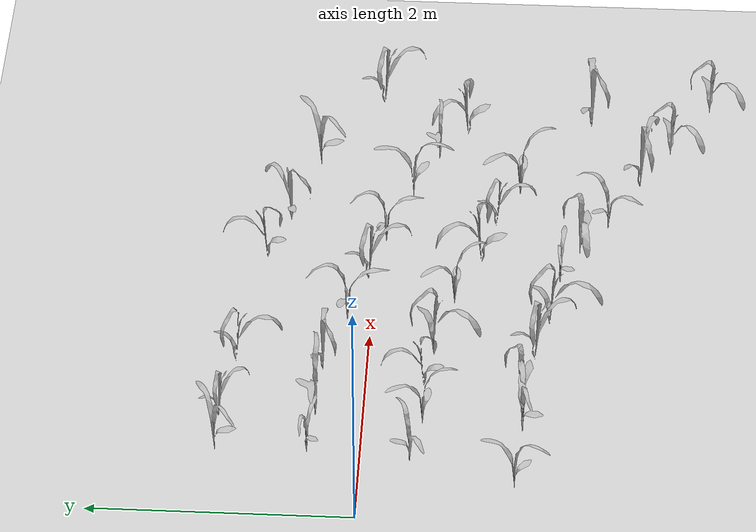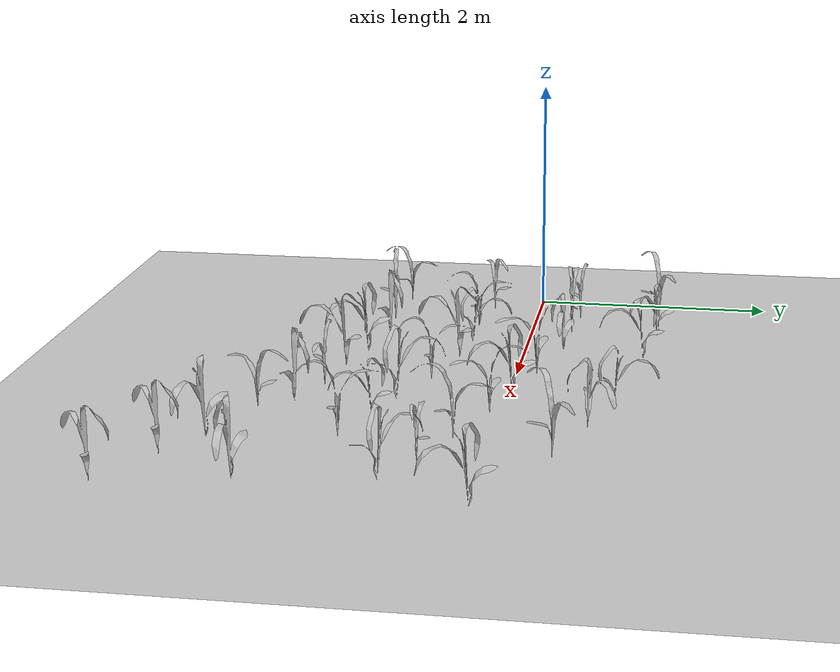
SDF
<sdf version="1.6">
 <world name="default">
  <model name="ground_plane">
   <static>1</static>
   <link name="link">
    <collision name="collision">
     <geometry><plane><normal>0 0 1</normal><size>100 100</size></plane></geometry>
     <surface>
      <contact><collide_bitmask>65535</collide_bitmask></contact>
      <friction><ode><mu>100</mu><mu2>50</mu2></ode></friction>
     </surface>
    </collision>
    <visual name="visual">
     <cast_shadows>0</cast_shadows>
     <geometry><plane><normal>0 0 1</normal><size>100 100</size></plane></geometry>
     <material>
      <script><uri>file://media/materials/scripts/gazebo.material</uri><name>Gazebo/Grey</name></script>
     </material>
    </visual>
   </link>
  </model>
  <model name="maize_02_0000">
   <pose>0.6266364575345471 0.39372613624309966 0.05 0 -0 1.9641627684335625</pose>
   <link name="maize_02_0000_link">
    <inertial>
     <mass>5.0</mass>
     <inertia>
      <ixx>0.0033416667</ixx>
      <ixy>0</ixy>
      <ixz>0</ixz>
      <iyy>0.0033416667</iyy>
      <iyz>0</iyz>
      <izz>0.000016666667</izz>
     </inertia>
     <pose>0 0 0.1 0 0 0</pose>
    </inertial>
    <collision name="collision">
     <pose>0 0 0.2 0 -0 0</pose>
     <geometry><box><size>0.02 0.02 0.4</size></box></geometry>
     <surface><friction><ode><mu>10</mu><mu2>10</mu2></ode></friction></surface>
    </collision>
    <visual name="visual">
     <geometry>
      <mesh>
       <uri>model://maize_02/meshes/maize_02.dae</uri>
       <scale>0.5086841816509051 0.5086841816509051 0.5086841816509051</scale>
      </mesh>
     </geometry>
    </visual>
   </link>
  </model>
  <model name="maize_02_0001">
   <pose>0.5962759465924191 1.0790101247407116 0.05 0 -0 2.660585233036896</pose>
   <link name="maize_02_0001_link">
    <inertial>
     <mass>5.0</mass>
     <inertia>
      <ixx>0.0033416667</ixx>
      <ixy>0</ixy>
      <ixz>0</ixz>
      <iyy>0.0033416667</iyy>
      <iyz>0</iyz>
      <izz>0.000016666667</izz>
     </inertia>
     <pose>0 0 0.1 0 0 0</pose>
    </inertial>
    <collision name="collision">
     <pose>0 0 0.2 0 -0 0</pose>
     <geometry><box><size>0.02 0.02 0.4</size></box></geometry>
     <surface><friction><ode><mu>10</mu><mu2>10</mu2></ode></friction></surface>
    </collision>
    <visual name="visual">
     <geometry>
      <mesh>
       <uri>model://maize_02/meshes/maize_02.dae</uri>
       <scale>0.6406825514052783 0.6406825514052783 0.6406825514052783</scale>
      </mesh>
     </geometry>
    </visual>
   </link>
  </model>
  <model name="maize_02_0002">
   <pose>0.5128687947471398 -0.3780994728694755 0.05 0 -0 5.74405830510388</pose>
   <link name="maize_02_0002_link">
    <inertial>
     <mass>5.0</mass>
     <inertia>
      <ixx>0.0033416667</ixx>
      <ixy>0</ixy>
      <ixz>0</ixz>
      <iyy>0.0033416667</iyy>
      <iyz>0</iyz>
      <izz>0.000016666667</izz>
     </inertia>
     <pose>0 0 0.1 0 0 0</pose>
    </inertial>
    <collision name="collision">
     <pose>0 0 0.2 0 -0 0</pose>
     <geometry><box><size>0.02 0.02 0.4</size></box></geometry>
     <surface><friction><ode><mu>10</mu><mu2>10</mu2></ode></friction></surface>
    </collision>
    <visual name="visual">
     <geometry>
      <mesh>
       <uri>model://maize_02/meshes/maize_02.dae</uri>
       <scale>0.5696515739499298 0.5696515739499298 0.5696515739499298</scale>
      </mesh>
     </geometry>
    </visual>
   </link>
  </model>
  <model name="maize_02_0003">
   <pose>0.31845714802949465 -1.1657478187782875 0.05 0 -0 3.3294222100646813</pose>
   <link name="maize_02_0003_link">
    <inertial>
     <mass>5.0</mass>
     <inertia>
      <ixx>0.0033416667</ixx>
      <ixy>0</ixy>
      <ixz>0</ixz>
      <iyy>0.0033416667</iyy>
      <iyz>0</iyz>
      <izz>0.000016666667</izz>
     </inertia>
     <pose>0 0 0.1 0 0 0</pose>
    </inertial>
    <collision name="collision">
     <pose>0 0 0.2 0 -0 0</pose>
     <geometry><box><size>0.02 0.02 0.4</size></box></geometry>
     <surface><friction><ode><mu>10</mu><mu2>10</mu2></ode></friction></surface>
    </collision>
    <visual name="visual">
     <geometry>
      <mesh>
       <uri>model://maize_02/meshes/maize_02.dae</uri>
       <scale>0.5413600755372572 0.5413600755372572 0.5413600755372572</scale>
      </mesh>
     </geometry>
    </visual>
   </link>
  </model>
  <model name="maize_02_0004">
   <pose>1.010929968299112 0.35485476023361967 0.05 0 -0 5.314568562107953</pose>
   <link name="maize_02_0004_link">
    <inertial>
     <mass>5.0</mass>
     <inertia>
      <ixx>0.0033416667</ixx>
      <ixy>0</ixy>
      <ixz>0</ixz>
      <iyy>0.0033416667</iyy>
      <iyz>0</iyz>
      <izz>0.000016666667</izz>
     </inertia>
     <pose>0 0 0.1 0 0 0</pose>
    </inertial>
    <collision name="collision">
     <pose>0 0 0.2 0 -0 0</pose>
     <geometry><box><size>0.02 0.02 0.4</size></box></geometry>
     <surface><friction><ode><mu>10</mu><mu2>10</mu2></ode></friction></surface>
    </collision>
    <visual name="visual">
     <geometry>
      <mesh>
       <uri>model://maize_02/meshes/maize_02.dae</uri>
       <scale>0.6919220891193916 0.6919220891193916 0.6919220891193916</scale>
      </mesh>
     </geometry>
    </visual>
   </link>
  </model>
  <model name="maize_01_0005">
   <pose>0.9939459487335675 1.081394744851532 0.05 0 -0 6.267126563444176</pose>
   <link name="maize_01_0005_link">
    <inertial>
     <mass>5.0</mass>
     <inertia>
      <ixx>0.0033416667</ixx>
      <ixy>0</ixy>
      <ixz>0</ixz>
      <iyy>0.0033416667</iyy>
      <iyz>0</iyz>
      <izz>0.000016666667</izz>
     </inertia>
     <pose>0 0 0.1 0 0 0</pose>
    </inertial>
    <collision name="collision">
     <pose>0 0 0.2 0 -0 0</pose>
     <geometry><box><size>0.02 0.02 0.4</size></box></geometry>
     <surface><friction><ode><mu>10</mu><mu2>10</mu2></ode></friction></surface>
    </collision>
    <visual name="visual">
     <geometry>
      <mesh>
       <uri>model://maize_01/meshes/maize_01.dae</uri>
       <scale>0.5041995030593036 0.5041995030593036 0.5041995030593036</scale>
      </mesh>
     </geometry>
    </visual>
   </link>
  </model>
  <model name="maize_02_0006">
   <pose>0.9931900532488495 -0.4531246310262997 0.05 0 -0 4.064353292946309</pose>
   <link name="maize_02_0006_link">
    <inertial>
     <mass>5.0</mass>
     <inertia>
      <ixx>0.0033416667</ixx>
      <ixy>0</ixy>
      <ixz>0</ixz>
      <iyy>0.0033416667</iyy>
      <iyz>0</iyz>
      <izz>0.000016666667</izz>
     </inertia>
     <pose>0 0 0.1 0 0 0</pose>
    </inertial>
    <collision name="collision">
     <pose>0 0 0.2 0 -0 0</pose>
     <geometry><box><size>0.02 0.02 0.4</size></box></geometry>
     <surface><friction><ode><mu>10</mu><mu2>10</mu2></ode></friction></surface>
    </collision>
    <visual name="visual">
     <geometry>
      <mesh>
       <uri>model://maize_02/meshes/maize_02.dae</uri>
       <scale>0.5553610326463208 0.5553610326463208 0.5553610326463208</scale>
      </mesh>
     </geometry>
    </visual>
   </link>
  </model>
  <model name="maize_02_0007">
   <pose>0.9022254378881605 -1.2091889074268443 0.05 0 -0 2.301816142782291</pose>
   <link name="maize_02_0007_link">
    <inertial>
     <mass>5.0</mass>
     <inertia>
      <ixx>0.0033416667</ixx>
      <ixy>0</ixy>
      <ixz>0</ixz>
      <iyy>0.0033416667</iyy>
      <iyz>0</iyz>
      <izz>0.000016666667</izz>
     </inertia>
     <pose>0 0 0.1 0 0 0</pose>
    </inertial>
    <collision name="collision">
     <pose>0 0 0.2 0 -0 0</pose>
     <geometry><box><size>0.02 0.02 0.4</size></box></geometry>
     <surface><friction><ode><mu>10</mu><mu2>10</mu2></ode></friction></surface>
    </collision>
    <visual name="visual">
     <geometry>
      <mesh>
       <uri>model://maize_02/meshes/maize_02.dae</uri>
       <scale>0.6560324845618973 0.6560324845618973 0.6560324845618973</scale>
      </mesh>
     </geometry>
    </visual>
   </link>
  </model>
  <model name="maize_01_0008">
   <pose>1.5543757841614014 0.32974811669279225 0.05 0 -0 0.7992736679091289</pose>
   <link name="maize_01_0008_link">
    <inertial>
     <mass>5.0</mass>
     <inertia>
      <ixx>0.0033416667</ixx>
      <ixy>0</ixy>
      <ixz>0</ixz>
      <iyy>0.0033416667</iyy>
      <iyz>0</iyz>
      <izz>0.000016666667</izz>
     </inertia>
     <pose>0 0 0.1 0 0 0</pose>
    </inertial>
    <collision name="collision">
     <pose>0 0 0.2 0 -0 0</pose>
     <geometry><box><size>0.02 0.02 0.4</size></box></geometry>
     <surface><friction><ode><mu>10</mu><mu2>10</mu2></ode></friction></surface>
    </collision>
    <visual name="visual">
     <geometry>
      <mesh>
       <uri>model://maize_01/meshes/maize_01.dae</uri>
       <scale>0.5563104025952799 0.5563104025952799 0.5563104025952799</scale>
      </mesh>
     </geometry>
    </visual>
   </link>
  </model>
  <model name="maize_01_0009">
   <pose>1.6142526512537347 0.9980892180156831 0.05 0 -0 5.677408055906511</pose>
   <link name="maize_01_0009_link">
    <inertial>
     <mass>5.0</mass>
     <inertia>
      <ixx>0.0033416667</ixx>
      <ixy>0</ixy>
      <ixz>0</ixz>
      <iyy>0.0033416667</iyy>
      <iyz>0</iyz>
      <izz>0.000016666667</izz>
     </inertia>
     <pose>0 0 0.1 0 0 0</pose>
    </inertial>
    <collision name="collision">
     <pose>0 0 0.2 0 -0 0</pose>
     <geometry><box><size>0.02 0.02 0.4</size></box></geometry>
     <surface><friction><ode><mu>10</mu><mu2>10</mu2></ode></friction></surface>
    </collision>
    <visual name="visual">
     <geometry>
      <mesh>
       <uri>model://maize_01/meshes/maize_01.dae</uri>
       <scale>0.5870345795003608 0.5870345795003608 0.5870345795003608</scale>
      </mesh>
     </geometry>
    </visual>
   </link>
  </model>
  <model name="maize_01_0010">
   <pose>1.4126763547098145 -0.4428748331876621 0.05 0 -0 2.5425948862840824</pose>
   <link name="maize_01_0010_link">
    <inertial>
     <mass>5.0</mass>
     <inertia>
      <ixx>0.0033416667</ixx>
      <ixy>0</ixy>
      <ixz>0</ixz>
      <iyy>0.0033416667</iyy>
      <iyz>0</iyz>
      <izz>0.000016666667</izz>
     </inertia>
     <pose>0 0 0.1 0 0 0</pose>
    </inertial>
    <collision name="collision">
     <pose>0 0 0.2 0 -0 0</pose>
     <geometry><box><size>0.02 0.02 0.4</size></box></geometry>
     <surface><friction><ode><mu>10</mu><mu2>10</mu2></ode></friction></surface>
    </collision>
    <visual name="visual">
     <geometry>
      <mesh>
       <uri>model://maize_01/meshes/maize_01.dae</uri>
       <scale>0.5321163581084744 0.5321163581084744 0.5321163581084744</scale>
      </mesh>
     </geometry>
    </visual>
   </link>
  </model>
  <model name="maize_01_0011">
   <pose>1.2613246954050141 -1.1810825126649775 0.05 0 -0 3.9880871282682717</pose>
   <link name="maize_01_0011_link">
    <inertial>
     <mass>5.0</mass>
     <inertia>
      <ixx>0.0033416667</ixx>
      <ixy>0</ixy>
      <ixz>0</ixz>
      <iyy>0.0033416667</iyy>
      <iyz>0</iyz>
      <izz>0.000016666667</izz>
     </inertia>
     <pose>0 0 0.1 0 0 0</pose>
    </inertial>
    <collision name="collision">
     <pose>0 0 0.2 0 -0 0</pose>
     <geometry><box><size>0.02 0.02 0.4</size></box></geometry>
     <surface><friction><ode><mu>10</mu><mu2>10</mu2></ode></friction></surface>
    </collision>
    <visual name="visual">
     <geometry>
      <mesh>
       <uri>model://maize_01/meshes/maize_01.dae</uri>
       <scale>0.6214562390623211 0.6214562390623211 0.6214562390623211</scale>
      </mesh>
     </geometry>
    </visual>
   </link>
  </model>
  <model name="maize_02_0012">
   <pose>2.117381381137382 0.17774427089105627 0.05 0 -0 0.8896829542763507</pose>
   <link name="maize_02_0012_link">
    <inertial>
     <mass>5.0</mass>
     <inertia>
      <ixx>0.0033416667</ixx>
      <ixy>0</ixy>
      <ixz>0</ixz>
      <iyy>0.0033416667</iyy>
      <iyz>0</iyz>
      <izz>0.000016666667</izz>
     </inertia>
     <pose>0 0 0.1 0 0 0</pose>
    </inertial>
    <collision name="collision">
     <pose>0 0 0.2 0 -0 0</pose>
     <geometry><box><size>0.02 0.02 0.4</size></box></geometry>
     <surface><friction><ode><mu>10</mu><mu2>10</mu2></ode></friction></surface>
    </collision>
    <visual name="visual">
     <geometry>
      <mesh>
       <uri>model://maize_02/meshes/maize_02.dae</uri>
       <scale>0.6501948061595682 0.6501948061595682 0.6501948061595682</scale>
      </mesh>
     </geometry>
    </visual>
   </link>
  </model>
  <model name="maize_01_0013">
   <pose>1.8214492115148906 -0.49392862979805585 0.05 0 -0 5.032388599302817</pose>
   <link name="maize_01_0013_link">
    <inertial>
     <mass>5.0</mass>
     <inertia>
      <ixx>0.0033416667</ixx>
      <ixy>0</ixy>
      <ixz>0</ixz>
      <iyy>0.0033416667</iyy>
      <iyz>0</iyz>
      <izz>0.000016666667</izz>
     </inertia>
     <pose>0 0 0.1 0 0 0</pose>
    </inertial>
    <collision name="collision">
     <pose>0 0 0.2 0 -0 0</pose>
     <geometry><box><size>0.02 0.02 0.4</size></box></geometry>
     <surface><friction><ode><mu>10</mu><mu2>10</mu2></ode></friction></surface>
    </collision>
    <visual name="visual">
     <geometry>
      <mesh>
       <uri>model://maize_01/meshes/maize_01.dae</uri>
       <scale>0.6718502290288646 0.6718502290288646 0.6718502290288646</scale>
      </mesh>
     </geometry>
    </visual>
   </link>
  </model>
  <model name="maize_01_0014">
   <pose>1.7509077911397395 -1.278315929472419 0.05 0 -0 6.197729006710317</pose>
   <link name="maize_01_0014_link">
    <inertial>
     <mass>5.0</mass>
     <inertia>
      <ixx>0.0033416667</ixx>
      <ixy>0</ixy>
      <ixz>0</ixz>
      <iyy>0.0033416667</iyy>
      <iyz>0</iyz>
      <izz>0.000016666667</izz>
     </inertia>
     <pose>0 0 0.1 0 0 0</pose>
    </inertial>
    <collision name="collision">
     <pose>0 0 0.2 0 -0 0</pose>
     <geometry><box><size>0.02 0.02 0.4</size></box></geometry>
     <surface><friction><ode><mu>10</mu><mu2>10</mu2></ode></friction></surface>
    </collision>
    <visual name="visual">
     <geometry>
      <mesh>
       <uri>model://maize_01/meshes/maize_01.dae</uri>
       <scale>0.6485499601028807 0.6485499601028807 0.6485499601028807</scale>
      </mesh>
     </geometry>
    </visual>
   </link>
  </model>
  <model name="maize_01_0015">
   <pose>2.610562871970983 0.04088491732596357 0.05 0 -0 6.052160604748576</pose>
   <link name="maize_01_0015_link">
    <inertial>
     <mass>5.0</mass>
     <inertia>
      <ixx>0.0033416667</ixx>
      <ixy>0</ixy>
      <ixz>0</ixz>
      <iyy>0.0033416667</iyy>
      <iyz>0</iyz>
      <izz>0.000016666667</izz>
     </inertia>
     <pose>0 0 0.1 0 0 0</pose>
    </inertial>
    <collision name="collision">
     <pose>0 0 0.2 0 -0 0</pose>
     <geometry><box><size>0.02 0.02 0.4</size></box></geometry>
     <surface><friction><ode><mu>10</mu><mu2>10</mu2></ode></friction></surface>
    </collision>
    <visual name="visual">
     <geometry>
      <mesh>
       <uri>model://maize_01/meshes/maize_01.dae</uri>
       <scale>0.6244497621583954 0.6244497621583954 0.6244497621583954</scale>
      </mesh>
     </geometry>
    </visual>
   </link>
  </model>
  <model name="maize_01_0016">
   <pose>2.827711473248383 0.8460363309560727 0.05 0 -0 2.37700545942292</pose>
   <link name="maize_01_0016_link">
    <inertial>
     <mass>5.0</mass>
     <inertia>
      <ixx>0.0033416667</ixx>
      <ixy>0</ixy>
      <ixz>0</ixz>
      <iyy>0.0033416667</iyy>
      <iyz>0</iyz>
      <izz>0.000016666667</izz>
     </inertia>
     <pose>0 0 0.1 0 0 0</pose>
    </inertial>
    <collision name="collision">
     <pose>0 0 0.2 0 -0 0</pose>
     <geometry><box><size>0.02 0.02 0.4</size></box></geometry>
     <surface><friction><ode><mu>10</mu><mu2>10</mu2></ode></friction></surface>
    </collision>
    <visual name="visual">
     <geometry>
      <mesh>
       <uri>model://maize_01/meshes/maize_01.dae</uri>
       <scale>0.555690913712643 0.555690913712643 0.555690913712643</scale>
      </mesh>
     </geometry>
    </visual>
   </link>
  </model>
  <model name="maize_02_0017">
   <pose>2.3609275584324414 -0.6368521212228666 0.05 0 -0 4.3213343489436085</pose>
   <link name="maize_02_0017_link">
    <inertial>
     <mass>5.0</mass>
     <inertia>
      <ixx>0.0033416667</ixx>
      <ixy>0</ixy>
      <ixz>0</ixz>
      <iyy>0.0033416667</iyy>
      <iyz>0</iyz>
      <izz>0.000016666667</izz>
     </inertia>
     <pose>0 0 0.1 0 0 0</pose>
    </inertial>
    <collision name="collision">
     <pose>0 0 0.2 0 -0 0</pose>
     <geometry><box><size>0.02 0.02 0.4</size></box></geometry>
     <surface><friction><ode><mu>10</mu><mu2>10</mu2></ode></friction></surface>
    </collision>
    <visual name="visual">
     <geometry>
      <mesh>
       <uri>model://maize_02/meshes/maize_02.dae</uri>
       <scale>0.5812758422849028 0.5812758422849028 0.5812758422849028</scale>
      </mesh>
     </geometry>
    </visual>
   </link>
  </model>
  <model name="maize_01_0018">
   <pose>2.145035071532286 -1.3780438463552462 0.05 0 -0 5.251775204471827</pose>
   <link name="maize_01_0018_link">
    <inertial>
     <mass>5.0</mass>
     <inertia>
      <ixx>0.0033416667</ixx>
      <ixy>0</ixy>
      <ixz>0</ixz>
      <iyy>0.0033416667</iyy>
      <iyz>0</iyz>
      <izz>0.000016666667</izz>
     </inertia>
     <pose>0 0 0.1 0 0 0</pose>
    </inertial>
    <collision name="collision">
     <pose>0 0 0.2 0 -0 0</pose>
     <geometry><box><size>0.02 0.02 0.4</size></box></geometry>
     <surface><friction><ode><mu>10</mu><mu2>10</mu2></ode></friction></surface>
    </collision>
    <visual name="visual">
     <geometry>
      <mesh>
       <uri>model://maize_01/meshes/maize_01.dae</uri>
       <scale>0.6734187363013082 0.6734187363013082 0.6734187363013082</scale>
      </mesh>
     </geometry>
    </visual>
   </link>
  </model>
  <model name="maize_02_0019">
   <pose>3.0561824692400577 -0.07343694835041675 0.05 0 -0 0.8680041697787753</pose>
   <link name="maize_02_0019_link">
    <inertial>
     <mass>5.0</mass>
     <inertia>
      <ixx>0.0033416667</ixx>
      <ixy>0</ixy>
      <ixz>0</ixz>
      <iyy>0.0033416667</iyy>
      <iyz>0</iyz>
      <izz>0.000016666667</izz>
     </inertia>
     <pose>0 0 0.1 0 0 0</pose>
    </inertial>
    <collision name="collision">
     <pose>0 0 0.2 0 -0 0</pose>
     <geometry><box><size>0.02 0.02 0.4</size></box></geometry>
     <surface><friction><ode><mu>10</mu><mu2>10</mu2></ode></friction></surface>
    </collision>
    <visual name="visual">
     <geometry>
      <mesh>
       <uri>model://maize_02/meshes/maize_02.dae</uri>
       <scale>0.5809876807574693 0.5809876807574693 0.5809876807574693</scale>
      </mesh>
     </geometry>
    </visual>
   </link>
  </model>
  <model name="maize_01_0020">
   <pose>3.253096932243729 0.6820665395602563 0.05 0 -0 1.4291629961739294</pose>
   <link name="maize_01_0020_link">
    <inertial>
     <mass>5.0</mass>
     <inertia>
      <ixx>0.0033416667</ixx>
      <ixy>0</ixy>
      <ixz>0</ixz>
      <iyy>0.0033416667</iyy>
      <iyz>0</iyz>
      <izz>0.000016666667</izz>
     </inertia>
     <pose>0 0 0.1 0 0 0</pose>
    </inertial>
    <collision name="collision">
     <pose>0 0 0.2 0 -0 0</pose>
     <geometry><box><size>0.02 0.02 0.4</size></box></geometry>
     <surface><friction><ode><mu>10</mu><mu2>10</mu2></ode></friction></surface>
    </collision>
    <visual name="visual">
     <geometry>
      <mesh>
       <uri>model://maize_01/meshes/maize_01.dae</uri>
       <scale>0.5929236032924424 0.5929236032924424 0.5929236032924424</scale>
      </mesh>
     </geometry>
    </visual>
   </link>
  </model>
  <model name="maize_01_0021">
   <pose>2.8500810738724986 -0.8256093108062299 0.05 0 -0 2.868091574888298</pose>
   <link name="maize_01_0021_link">
    <inertial>
     <mass>5.0</mass>
     <inertia>
      <ixx>0.0033416667</ixx>
      <ixy>0</ixy>
      <ixz>0</ixz>
      <iyy>0.0033416667</iyy>
      <iyz>0</iyz>
      <izz>0.000016666667</izz>
     </inertia>
     <pose>0 0 0.1 0 0 0</pose>
    </inertial>
    <collision name="collision">
     <pose>0 0 0.2 0 -0 0</pose>
     <geometry><box><size>0.02 0.02 0.4</size></box></geometry>
     <surface><friction><ode><mu>10</mu><mu2>10</mu2></ode></friction></surface>
    </collision>
    <visual name="visual">
     <geometry>
      <mesh>
       <uri>model://maize_01/meshes/maize_01.dae</uri>
       <scale>0.6555497364067202 0.6555497364067202 0.6555497364067202</scale>
      </mesh>
     </geometry>
    </visual>
   </link>
  </model>
  <model name="maize_02_0022">
   <pose>2.6196600651793935 -1.446786259412549 0.05 0 -0 2.111339940765336</pose>
   <link name="maize_02_0022_link">
    <inertial>
     <mass>5.0</mass>
     <inertia>
      <ixx>0.0033416667</ixx>
      <ixy>0</ixy>
      <ixz>0</ixz>
      <iyy>0.0033416667</iyy>
      <iyz>0</iyz>
      <izz>0.000016666667</izz>
     </inertia>
     <pose>0 0 0.1 0 0 0</pose>
    </inertial>
    <collision name="collision">
     <pose>0 0 0.2 0 -0 0</pose>
     <geometry><box><size>0.02 0.02 0.4</size></box></geometry>
     <surface><friction><ode><mu>10</mu><mu2>10</mu2></ode></friction></surface>
    </collision>
    <visual name="visual">
     <geometry>
      <mesh>
       <uri>model://maize_02/meshes/maize_02.dae</uri>
       <scale>0.5350570079705032 0.5350570079705032 0.5350570079705032</scale>
      </mesh>
     </geometry>
    </visual>
   </link>
  </model>
  <model name="maize_02_0023">
   <pose>3.628240788240428 -0.25932237432375804 0.05 0 -0 3.5959585147650697</pose>
   <link name="maize_02_0023_link">
    <inertial>
     <mass>5.0</mass>
     <inertia>
      <ixx>0.0033416667</ixx>
      <ixy>0</ixy>
      <ixz>0</ixz>
      <iyy>0.0033416667</iyy>
      <iyz>0</iyz>
      <izz>0.000016666667</izz>
     </inertia>
     <pose>0 0 0.1 0 0 0</pose>
    </inertial>
    <collision name="collision">
     <pose>0 0 0.2 0 -0 0</pose>
     <geometry><box><size>0.02 0.02 0.4</size></box></geometry>
     <surface><friction><ode><mu>10</mu><mu2>10</mu2></ode></friction></surface>
    </collision>
    <visual name="visual">
     <geometry>
      <mesh>
       <uri>model://maize_02/meshes/maize_02.dae</uri>
       <scale>0.6202048061788187 0.6202048061788187 0.6202048061788187</scale>
      </mesh>
     </geometry>
    </visual>
   </link>
  </model>
  <model name="maize_02_0024">
   <pose>3.9411512500950634 0.49162132291938226 0.05 0 -0 2.7278973776733535</pose>
   <link name="maize_02_0024_link">
    <inertial>
     <mass>5.0</mass>
     <inertia>
      <ixx>0.0033416667</ixx>
      <ixy>0</ixy>
      <ixz>0</ixz>
      <iyy>0.0033416667</iyy>
      <iyz>0</iyz>
      <izz>0.000016666667</izz>
     </inertia>
     <pose>0 0 0.1 0 0 0</pose>
    </inertial>
    <collision name="collision">
     <pose>0 0 0.2 0 -0 0</pose>
     <geometry><box><size>0.02 0.02 0.4</size></box></geometry>
     <surface><friction><ode><mu>10</mu><mu2>10</mu2></ode></friction></surface>
    </collision>
    <visual name="visual">
     <geometry>
      <mesh>
       <uri>model://maize_02/meshes/maize_02.dae</uri>
       <scale>0.6937054132654896 0.6937054132654896 0.6937054132654896</scale>
      </mesh>
     </geometry>
    </visual>
   </link>
  </model>
  <model name="maize_01_0025">
   <pose>3.2962788645520087 -0.928187140023274 0.05 0 -0 5.79360503332898</pose>
   <link name="maize_01_0025_link">
    <inertial>
     <mass>5.0</mass>
     <inertia>
      <ixx>0.0033416667</ixx>
      <ixy>0</ixy>
      <ixz>0</ixz>
      <iyy>0.0033416667</iyy>
      <iyz>0</iyz>
      <izz>0.000016666667</izz>
     </inertia>
     <pose>0 0 0.1 0 0 0</pose>
    </inertial>
    <collision name="collision">
     <pose>0 0 0.2 0 -0 0</pose>
     <geometry><box><size>0.02 0.02 0.4</size></box></geometry>
     <surface><friction><ode><mu>10</mu><mu2>10</mu2></ode></friction></surface>
    </collision>
    <visual name="visual">
     <geometry>
      <mesh>
       <uri>model://maize_01/meshes/maize_01.dae</uri>
       <scale>0.5284396797696428 0.5284396797696428 0.5284396797696428</scale>
      </mesh>
     </geometry>
    </visual>
   </link>
  </model>
  <model name="maize_01_0026">
   <pose>2.9973162024497375 -1.5905548633543536 0.05 0 -0 4.078197246147852</pose>
   <link name="maize_01_0026_link">
    <inertial>
     <mass>5.0</mass>
     <inertia>
      <ixx>0.0033416667</ixx>
      <ixy>0</ixy>
      <ixz>0</ixz>
      <iyy>0.0033416667</iyy>
      <iyz>0</iyz>
      <izz>0.000016666667</izz>
     </inertia>
     <pose>0 0 0.1 0 0 0</pose>
    </inertial>
    <collision name="collision">
     <pose>0 0 0.2 0 -0 0</pose>
     <geometry><box><size>0.02 0.02 0.4</size></box></geometry>
     <surface><friction><ode><mu>10</mu><mu2>10</mu2></ode></friction></surface>
    </collision>
    <visual name="visual">
     <geometry>
      <mesh>
       <uri>model://maize_01/meshes/maize_01.dae</uri>
       <scale>0.649500148864992 0.649500148864992 0.649500148864992</scale>
      </mesh>
     </geometry>
    </visual>
   </link>
  </model>
  <model name="maize_02_0027">
   <pose>4.074672588797058 -0.44623534887456334 0.05 0 -0 5.3136015967815915</pose>
   <link name="maize_02_0027_link">
    <inertial>
     <mass>5.0</mass>
     <inertia>
      <ixx>0.0033416667</ixx>
      <ixy>0</ixy>
      <ixz>0</ixz>
      <iyy>0.0033416667</iyy>
      <iyz>0</iyz>
      <izz>0.000016666667</izz>
     </inertia>
     <pose>0 0 0.1 0 0 0</pose>
    </inertial>
    <collision name="collision">
     <pose>0 0 0.2 0 -0 0</pose>
     <geometry><box><size>0.02 0.02 0.4</size></box></geometry>
     <surface><friction><ode><mu>10</mu><mu2>10</mu2></ode></friction></surface>
    </collision>
    <visual name="visual">
     <geometry>
      <mesh>
       <uri>model://maize_02/meshes/maize_02.dae</uri>
       <scale>0.5188962655965342 0.5188962655965342 0.5188962655965342</scale>
      </mesh>
     </geometry>
    </visual>
   </link>
  </model>
  <model name="maize_02_0028">
   <pose>3.676957466873761 -1.103463109708256 0.05 0 -0 4.300579717721141</pose>
   <link name="maize_02_0028_link">
    <inertial>
     <mass>5.0</mass>
     <inertia>
      <ixx>0.0033416667</ixx>
      <ixy>0</ixy>
      <ixz>0</ixz>
      <iyy>0.0033416667</iyy>
      <iyz>0</iyz>
      <izz>0.000016666667</izz>
     </inertia>
     <pose>0 0 0.1 0 0 0</pose>
    </inertial>
    <collision name="collision">
     <pose>0 0 0.2 0 -0 0</pose>
     <geometry><box><size>0.02 0.02 0.4</size></box></geometry>
     <surface><friction><ode><mu>10</mu><mu2>10</mu2></ode></friction></surface>
    </collision>
    <visual name="visual">
     <geometry>
      <mesh>
       <uri>model://maize_02/meshes/maize_02.dae</uri>
       <scale>0.6567580944991641 0.6567580944991641 0.6567580944991641</scale>
      </mesh>
     </geometry>
    </visual>
   </link>
  </model>
  <model name="maize_02_0029">
   <pose>3.2753329141627803 -1.8076560237411745 0.05 0 -0 0.12776244219765875</pose>
   <link name="maize_02_0029_link">
    <inertial>
     <mass>5.0</mass>
     <inertia>
      <ixx>0.0033416667</ixx>
      <ixy>0</ixy>
      <ixz>0</ixz>
      <iyy>0.0033416667</iyy>
      <iyz>0</iyz>
      <izz>0.000016666667</izz>
     </inertia>
     <pose>0 0 0.1 0 0 0</pose>
    </inertial>
    <collision name="collision">
     <pose>0 0 0.2 0 -0 0</pose>
     <geometry><box><size>0.02 0.02 0.4</size></box></geometry>
     <surface><friction><ode><mu>10</mu><mu2>10</mu2></ode></friction></surface>
    </collision>
    <visual name="visual">
     <geometry>
      <mesh>
       <uri>model://maize_02/meshes/maize_02.dae</uri>
       <scale>0.5728051474270807 0.5728051474270807 0.5728051474270807</scale>
      </mesh>
     </geometry>
    </visual>
   </link>
  </model>
  <model name="maize_01_0030">
   <pose>4.421838511337381 -0.658126533851357 0.05 0 -0 3.080604276302289</pose>
   <link name="maize_01_0030_link">
    <inertial>
     <mass>5.0</mass>
     <inertia>
      <ixx>0.0033416667</ixx>
      <ixy>0</ixy>
      <ixz>0</ixz>
      <iyy>0.0033416667</iyy>
      <iyz>0</iyz>
      <izz>0.000016666667</izz>
     </inertia>
     <pose>0 0 0.1 0 0 0</pose>
    </inertial>
    <collision name="collision">
     <pose>0 0 0.2 0 -0 0</pose>
     <geometry><box><size>0.02 0.02 0.4</size></box></geometry>
     <surface><friction><ode><mu>10</mu><mu2>10</mu2></ode></friction></surface>
    </collision>
    <visual name="visual">
     <geometry>
      <mesh>
       <uri>model://maize_01/meshes/maize_01.dae</uri>
       <scale>0.6058283559218649 0.6058283559218649 0.6058283559218649</scale>
      </mesh>
     </geometry>
    </visual>
   </link>
  </model>
  <model name="maize_01_0031">
   <pose>4.7747913944289655 0.028605480432138175 0.05 0 -0 6.114018201514687</pose>
   <link name="maize_01_0031_link">
    <inertial>
     <mass>5.0</mass>
     <inertia>
      <ixx>0.0033416667</ixx>
      <ixy>0</ixy>
      <ixz>0</ixz>
      <iyy>0.0033416667</iyy>
      <iyz>0</iyz>
      <izz>0.000016666667</izz>
     </inertia>
     <pose>0 0 0.1 0 0 0</pose>
    </inertial>
    <collision name="collision">
     <pose>0 0 0.2 0 -0 0</pose>
     <geometry><box><size>0.02 0.02 0.4</size></box></geometry>
     <surface><friction><ode><mu>10</mu><mu2>10</mu2></ode></friction></surface>
    </collision>
    <visual name="visual">
     <geometry>
      <mesh>
       <uri>model://maize_01/meshes/maize_01.dae</uri>
       <scale>0.6418534989219045 0.6418534989219045 0.6418534989219045</scale>
      </mesh>
     </geometry>
    </visual>
   </link>
  </model>
  <model name="maize_01_0032">
   <pose>3.8266407645455143 -2.0542169704420634 0.05 0 -0 0.5064677503961031</pose>
   <link name="maize_01_0032_link">
    <inertial>
     <mass>5.0</mass>
     <inertia>
      <ixx>0.0033416667</ixx>
      <ixy>0</ixy>
      <ixz>0</ixz>
      <iyy>0.0033416667</iyy>
      <iyz>0</iyz>
      <izz>0.000016666667</izz>
     </inertia>
     <pose>0 0 0.1 0 0 0</pose>
    </inertial>
    <collision name="collision">
     <pose>0 0 0.2 0 -0 0</pose>
     <geometry><box><size>0.02 0.02 0.4</size></box></geometry>
     <surface><friction><ode><mu>10</mu><mu2>10</mu2></ode></friction></surface>
    </collision>
    <visual name="visual">
     <geometry>
      <mesh>
       <uri>model://maize_01/meshes/maize_01.dae</uri>
       <scale>0.6841275694167503 0.6841275694167503 0.6841275694167503</scale>
      </mesh>
     </geometry>
    </visual>
   </link>
  </model>
  <model name="maize_01_0035">
   <pose>4.5571934358591415 -1.655143968629076 0.05 0 -0 0.8561002226769375</pose>
   <link name="maize_01_0035_link">
    <inertial>
     <mass>5.0</mass>
     <inertia>
      <ixx>0.0033416667</ixx>
      <ixy>0</ixy>
      <ixz>0</ixz>
      <iyy>0.0033416667</iyy>
      <iyz>0</iyz>
      <izz>0.000016666667</izz>
     </inertia>
     <pose>0 0 0.1 0 0 0</pose>
    </inertial>
    <collision name="collision">
     <pose>0 0 0.2 0 -0 0</pose>
     <geometry><box><size>0.02 0.02 0.4</size></box></geometry>
     <surface><friction><ode><mu>10</mu><mu2>10</mu2></ode></friction></surface>
    </collision>
    <visual name="visual">
     <geometry>
      <mesh>
       <uri>model://maize_01/meshes/maize_01.dae</uri>
       <scale>0.6620862601144785 0.6620862601144785 0.6620862601144785</scale>
      </mesh>
     </geometry>
    </visual>
   </link>
  </model>
  <model name="maize_01_0036">
   <pose>4.198551510706265 -2.284944472782861 0.05 0 -0 4.681897560401231</pose>
   <link name="maize_01_0036_link">
    <inertial>
     <mass>5.0</mass>
     <inertia>
      <ixx>0.0033416667</ixx>
      <ixy>0</ixy>
      <ixz>0</ixz>
      <iyy>0.0033416667</iyy>
      <iyz>0</iyz>
      <izz>0.000016666667</izz>
     </inertia>
     <pose>0 0 0.1 0 0 0</pose>
    </inertial>
    <collision name="collision">
     <pose>0 0 0.2 0 -0 0</pose>
     <geometry><box><size>0.02 0.02 0.4</size></box></geometry>
     <surface><friction><ode><mu>10</mu><mu2>10</mu2></ode></friction></surface>
    </collision>
    <visual name="visual">
     <geometry>
      <mesh>
       <uri>model://maize_01/meshes/maize_01.dae</uri>
       <scale>0.6173646528607816 0.6173646528607816 0.6173646528607816</scale>
      </mesh>
     </geometry>
    </visual>
   </link>
  </model>
  <model name="maize_01_0040">
   <pose>4.751342506149417 -2.5979396704832056 0.05 0 -0 4.720329252662079</pose>
   <link name="maize_01_0040_link">
    <inertial>
     <mass>5.0</mass>
     <inertia>
      <ixx>0.0033416667</ixx>
      <ixy>0</ixy>
      <ixz>0</ixz>
      <iyy>0.0033416667</iyy>
      <iyz>0</iyz>
      <izz>0.000016666667</izz>
     </inertia>
     <pose>0 0 0.1 0 0 0</pose>
    </inertial>
    <collision name="collision">
     <pose>0 0 0.2 0 -0 0</pose>
     <geometry><box><size>0.02 0.02 0.4</size></box></geometry>
     <surface><friction><ode><mu>10</mu><mu2>10</mu2></ode></friction></surface>
    </collision>
    <visual name="visual">
     <geometry>
      <mesh>
       <uri>model://maize_01/meshes/maize_01.dae</uri>
       <scale>0.613702115524717 0.613702115524717 0.613702115524717</scale>
      </mesh>
     </geometry>
    </visual>
   </link>
  </model>
 </world>
</sdf>
